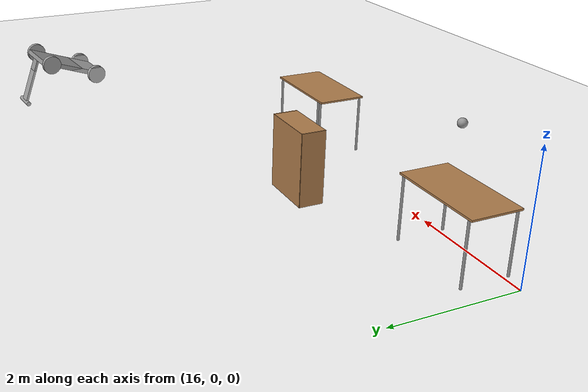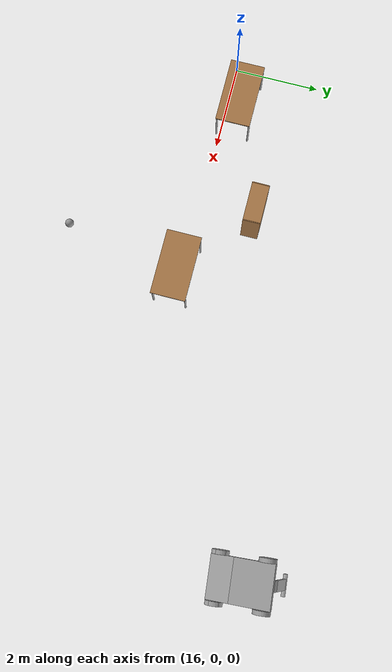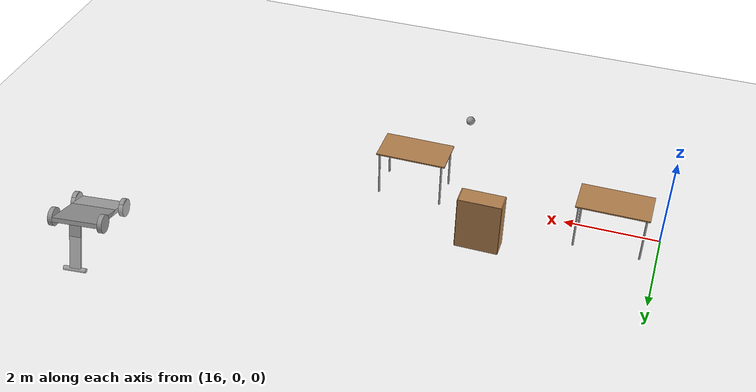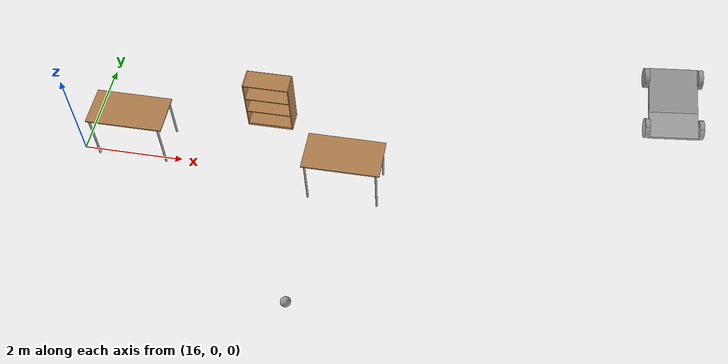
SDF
<sdf version="1.6">
 <world name="default">
  <model name="ground_plane">
   <static>1</static>
   <link name="link">
    <collision name="collision">
     <geometry><plane><normal>0 0 1</normal><size>100 100</size></plane></geometry>
     <surface><friction><ode><mu>100</mu><mu2>50</mu2></ode></friction></surface>
    </collision>
    <visual name="visual">
     <cast_shadows>0</cast_shadows>
     <geometry><plane><normal>0 0 1</normal><size>100 100</size></plane></geometry>
     <material>
      <script><uri>file://media/materials/scripts/gazebo.material</uri><name>Gazebo/Grey</name></script>
     </material>
    </visual>
   </link>
  </model>
  <model name="MyRover_0">
   <link name="link_0">
    <pose>0.552858 -0.344643 -0.228571 3.14159 1.57079 3.14159</pose>
    <inertial>
     <mass>1</mass>
     <inertia><ixx>0.145833</ixx><ixy>0</ixy><ixz>0</ixz><iyy>0.145833</iyy><iyz>0</iyz><izz>0.125</izz></inertia>
    </inertial>
    <visual name="visual">
     <geometry><cylinder><radius>0.2</radius><length>0.1</length></cylinder></geometry>
     <material>
      <lighting>1</lighting>
      <script><uri>file://media/materials/scripts/gazebo.material</uri><name>Gazebo/Grey</name></script>
      <ambient>0.3 0.3 0.3 1</ambient>
      <diffuse>0.7 0.7 0.7 1</diffuse>
      <specular>0.01 0.01 0.01 1</specular>
      <emissive>0 0 0 1</emissive>
      <shader type="vertex"><normal_map>__default__</normal_map></shader>
     </material>
    </visual>
    <collision name="collision">
     <geometry><cylinder><radius>0.2</radius><length>0.1</length></cylinder></geometry>
     <surface>
      <friction>
       <ode><mu>1</mu><mu2>1</mu2><fdir1>0 0 0</fdir1><slip1>0</slip1><slip2>0</slip2></ode>
       <torsional>
        <coefficient>1</coefficient>
        <patch_radius>0</patch_radius>
        <surface_radius>0</surface_radius>
        <use_patch_radius>1</use_patch_radius>
        <ode><slip>0</slip></ode>
       </torsional>
      </friction>
      <bounce><restitution_coefficient>0</restitution_coefficient><threshold>1e+06</threshold></bounce>
      <contact>
       <collide_without_contact>0</collide_without_contact>
       <collide_without_contact_bitmask>1</collide_without_contact_bitmask>
       <collide_bitmask>1</collide_bitmask>
       <ode>
        <soft_cfm>0</soft_cfm>
        <soft_erp>0.2</soft_erp>
        <kp>1e+13</kp>
        <kd>1</kd>
        <max_vel>0.01</max_vel>
        <min_depth>0</min_depth>
       </ode>
       <bullet>
        <split_impulse>1</split_impulse>
        <split_impulse_penetration_threshold>-0.01</split_impulse_penetration_threshold>
        <soft_cfm>0</soft_cfm>
        <soft_erp>0.2</soft_erp>
        <kp>1e+13</kp>
        <kd>1</kd>
       </bullet>
      </contact>
     </surface>
    </collision>
   </link>
   <link name="link_0_clone">
    <pose>-0.547144 0.755357 -0.228571 3.14159 1.57079 3.14159</pose>
    <inertial>
     <mass>1</mass>
     <inertia><ixx>0.145833</ixx><ixy>0</ixy><ixz>0</ixz><iyy>0.145833</iyy><iyz>0</iyz><izz>0.125</izz></inertia>
    </inertial>
    <visual name="visual">
     <geometry><cylinder><radius>0.2</radius><length>0.1</length></cylinder></geometry>
     <material>
      <lighting>1</lighting>
      <script><uri>file://media/materials/scripts/gazebo.material</uri><name>Gazebo/Grey</name></script>
      <ambient>0.3 0.3 0.3 1</ambient>
      <diffuse>0.7 0.7 0.7 1</diffuse>
      <specular>0.01 0.01 0.01 1</specular>
      <emissive>0 0 0 1</emissive>
      <shader type="vertex"><normal_map>__default__</normal_map></shader>
     </material>
    </visual>
    <collision name="collision">
     <geometry><cylinder><radius>0.2</radius><length>0.1</length></cylinder></geometry>
     <surface>
      <friction>
       <ode><mu>1</mu><mu2>1</mu2><fdir1>0 0 0</fdir1><slip1>0</slip1><slip2>0</slip2></ode>
       <torsional>
        <coefficient>1</coefficient>
        <patch_radius>0</patch_radius>
        <surface_radius>0</surface_radius>
        <use_patch_radius>1</use_patch_radius>
        <ode><slip>0</slip></ode>
       </torsional>
      </friction>
      <bounce><restitution_coefficient>0</restitution_coefficient><threshold>1e+06</threshold></bounce>
      <contact>
       <collide_without_contact>0</collide_without_contact>
       <collide_without_contact_bitmask>1</collide_without_contact_bitmask>
       <collide_bitmask>1</collide_bitmask>
       <ode>
        <soft_cfm>0</soft_cfm>
        <soft_erp>0.2</soft_erp>
        <kp>1e+13</kp>
        <kd>1</kd>
        <max_vel>0.01</max_vel>
        <min_depth>0</min_depth>
       </ode>
       <bullet>
        <split_impulse>1</split_impulse>
        <split_impulse_penetration_threshold>-0.01</split_impulse_penetration_threshold>
        <soft_cfm>0</soft_cfm>
        <soft_erp>0.2</soft_erp>
        <kp>1e+13</kp>
        <kd>1</kd>
       </bullet>
      </contact>
     </surface>
    </collision>
   </link>
   <link name="link_0_clone_0">
    <pose>0.552858 0.755357 -0.228571 3.14159 1.57079 3.14159</pose>
    <inertial>
     <mass>1</mass>
     <inertia><ixx>0.145833</ixx><ixy>0</ixy><ixz>0</ixz><iyy>0.145833</iyy><iyz>0</iyz><izz>0.125</izz></inertia>
    </inertial>
    <visual name="visual">
     <geometry><cylinder><radius>0.2</radius><length>0.1</length></cylinder></geometry>
     <material>
      <lighting>1</lighting>
      <script><uri>file://media/materials/scripts/gazebo.material</uri><name>Gazebo/Grey</name></script>
      <ambient>0.3 0.3 0.3 1</ambient>
      <diffuse>0.7 0.7 0.7 1</diffuse>
      <specular>0.01 0.01 0.01 1</specular>
      <emissive>0 0 0 1</emissive>
      <shader type="vertex"><normal_map>__default__</normal_map></shader>
     </material>
    </visual>
    <collision name="collision">
     <geometry><cylinder><radius>0.2</radius><length>0.1</length></cylinder></geometry>
     <surface>
      <friction>
       <ode><mu>1</mu><mu2>1</mu2><fdir1>0 0 0</fdir1><slip1>0</slip1><slip2>0</slip2></ode>
       <torsional>
        <coefficient>1</coefficient>
        <patch_radius>0</patch_radius>
        <surface_radius>0</surface_radius>
        <use_patch_radius>1</use_patch_radius>
        <ode><slip>0</slip></ode>
       </torsional>
      </friction>
      <bounce><restitution_coefficient>0</restitution_coefficient><threshold>1e+06</threshold></bounce>
      <contact>
       <collide_without_contact>0</collide_without_contact>
       <collide_without_contact_bitmask>1</collide_without_contact_bitmask>
       <collide_bitmask>1</collide_bitmask>
       <ode>
        <soft_cfm>0</soft_cfm>
        <soft_erp>0.2</soft_erp>
        <kp>1e+13</kp>
        <kd>1</kd>
        <max_vel>0.01</max_vel>
        <min_depth>0</min_depth>
       </ode>
       <bullet>
        <split_impulse>1</split_impulse>
        <split_impulse_penetration_threshold>-0.01</split_impulse_penetration_threshold>
        <soft_cfm>0</soft_cfm>
        <soft_erp>0.2</soft_erp>
        <kp>1e+13</kp>
        <kd>1</kd>
       </bullet>
      </contact>
     </surface>
    </collision>
   </link>
   <link name="link_0_clone_1">
    <pose>-0.547144 -0.344643 -0.228571 3.14159 1.57079 3.14159</pose>
    <inertial>
     <mass>1</mass>
     <inertia><ixx>0.145833</ixx><ixy>0</ixy><ixz>0</ixz><iyy>0.145833</iyy><iyz>0</iyz><izz>0.125</izz></inertia>
    </inertial>
    <visual name="visual">
     <geometry><cylinder><radius>0.2</radius><length>0.1</length></cylinder></geometry>
     <material>
      <lighting>1</lighting>
      <script><uri>file://media/materials/scripts/gazebo.material</uri><name>Gazebo/Grey</name></script>
      <ambient>0.3 0.3 0.3 1</ambient>
      <diffuse>0.7 0.7 0.7 1</diffuse>
      <specular>0.01 0.01 0.01 1</specular>
      <emissive>0 0 0 1</emissive>
      <shader type="vertex"><normal_map>__default__</normal_map></shader>
     </material>
    </visual>
    <collision name="collision">
     <geometry><cylinder><radius>0.2</radius><length>0.1</length></cylinder></geometry>
     <surface>
      <friction>
       <ode><mu>1</mu><mu2>1</mu2><fdir1>0 0 0</fdir1><slip1>0</slip1><slip2>0</slip2></ode>
       <torsional>
        <coefficient>1</coefficient>
        <patch_radius>0</patch_radius>
        <surface_radius>0</surface_radius>
        <use_patch_radius>1</use_patch_radius>
        <ode><slip>0</slip></ode>
       </torsional>
      </friction>
      <bounce><restitution_coefficient>0</restitution_coefficient><threshold>1e+06</threshold></bounce>
      <contact>
       <collide_without_contact>0</collide_without_contact>
       <collide_without_contact_bitmask>1</collide_without_contact_bitmask>
       <collide_bitmask>1</collide_bitmask>
       <ode>
        <soft_cfm>0</soft_cfm>
        <soft_erp>0.2</soft_erp>
        <kp>1e+13</kp>
        <kd>1</kd>
        <max_vel>0.01</max_vel>
        <min_depth>0</min_depth>
       </ode>
       <bullet>
        <split_impulse>1</split_impulse>
        <split_impulse_penetration_threshold>-0.01</split_impulse_penetration_threshold>
        <soft_cfm>0</soft_cfm>
        <soft_erp>0.2</soft_erp>
        <kp>1e+13</kp>
        <kd>1</kd>
       </bullet>
      </contact>
     </surface>
    </collision>
   </link>
   <link name="link_1">
    <pose>0.002857 0.205357 -0.228571 0 -0 0</pose>
    <inertial>
     <mass>1</mass>
     <inertia>
      <ixx>0.166667</ixx>
      <ixy>0</ixy>
      <ixz>0</ixz>
      <iyy>0.166667</iyy>
      <iyz>0</iyz>
      <izz>0.166667</izz>
     </inertia>
    </inertial>
    <visual name="visual">
     <geometry><box><size>1 1.5 0.1</size></box></geometry>
     <material>
      <lighting>1</lighting>
      <script><uri>file://media/materials/scripts/gazebo.material</uri><name>Gazebo/Grey</name></script>
      <ambient>0.3 0.3 0.3 1</ambient>
      <diffuse>0.7 0.7 0.7 1</diffuse>
      <specular>0.01 0.01 0.01 1</specular>
      <emissive>0 0 0 1</emissive>
      <shader type="vertex"><normal_map>__default__</normal_map></shader>
     </material>
    </visual>
    <collision name="collision">
     <geometry><box><size>1 1.5 0.1</size></box></geometry>
     <surface>
      <friction>
       <ode><mu>1</mu><mu2>1</mu2><fdir1>0 0 0</fdir1><slip1>0</slip1><slip2>0</slip2></ode>
       <torsional>
        <coefficient>1</coefficient>
        <patch_radius>0</patch_radius>
        <surface_radius>0</surface_radius>
        <use_patch_radius>1</use_patch_radius>
        <ode><slip>0</slip></ode>
       </torsional>
      </friction>
      <bounce><restitution_coefficient>0</restitution_coefficient><threshold>1e+06</threshold></bounce>
      <contact>
       <collide_without_contact>0</collide_without_contact>
       <collide_without_contact_bitmask>1</collide_without_contact_bitmask>
       <collide_bitmask>1</collide_bitmask>
       <ode>
        <soft_cfm>0</soft_cfm>
        <soft_erp>0.2</soft_erp>
        <kp>1e+13</kp>
        <kd>1</kd>
        <max_vel>0.01</max_vel>
        <min_depth>0</min_depth>
       </ode>
       <bullet>
        <split_impulse>1</split_impulse>
        <split_impulse_penetration_threshold>-0.01</split_impulse_penetration_threshold>
        <soft_cfm>0</soft_cfm>
        <soft_erp>0.2</soft_erp>
        <kp>1e+13</kp>
        <kd>1</kd>
       </bullet>
      </contact>
     </surface>
    </collision>
   </link>
   <link name="link_2">
    <pose>-0.017143 -0.519643 0.321429 0 -0 0</pose>
    <inertial>
     <mass>1</mass>
     <inertia>
      <ixx>0.166667</ixx>
      <ixy>0</ixy>
      <ixz>0</ixz>
      <iyy>0.166667</iyy>
      <iyz>0</iyz>
      <izz>0.166667</izz>
     </inertia>
    </inertial>
    <visual name="visual">
     <geometry><box><size>0.25 0.05 1</size></box></geometry>
     <material>
      <lighting>1</lighting>
      <script><uri>file://media/materials/scripts/gazebo.material</uri><name>Gazebo/Grey</name></script>
      <ambient>0.3 0.3 0.3 1</ambient>
      <diffuse>0.7 0.7 0.7 1</diffuse>
      <specular>0.01 0.01 0.01 1</specular>
      <emissive>0 0 0 1</emissive>
      <shader type="vertex"><normal_map>__default__</normal_map></shader>
     </material>
    </visual>
    <collision name="collision">
     <geometry><box><size>0.25 0.05 1</size></box></geometry>
     <surface>
      <friction>
       <ode><mu>1</mu><mu2>1</mu2><fdir1>0 0 0</fdir1><slip1>0</slip1><slip2>0</slip2></ode>
       <torsional>
        <coefficient>1</coefficient>
        <patch_radius>0</patch_radius>
        <surface_radius>0</surface_radius>
        <use_patch_radius>1</use_patch_radius>
        <ode><slip>0</slip></ode>
       </torsional>
      </friction>
      <bounce><restitution_coefficient>0</restitution_coefficient><threshold>1e+06</threshold></bounce>
      <contact>
       <collide_without_contact>0</collide_without_contact>
       <collide_without_contact_bitmask>1</collide_without_contact_bitmask>
       <collide_bitmask>1</collide_bitmask>
       <ode>
        <soft_cfm>0</soft_cfm>
        <soft_erp>0.2</soft_erp>
        <kp>1e+13</kp>
        <kd>1</kd>
        <max_vel>0.01</max_vel>
        <min_depth>0</min_depth>
       </ode>
       <bullet>
        <split_impulse>1</split_impulse>
        <split_impulse_penetration_threshold>-0.01</split_impulse_penetration_threshold>
        <soft_cfm>0</soft_cfm>
        <soft_erp>0.2</soft_erp>
        <kp>1e+13</kp>
        <kd>1</kd>
       </bullet>
      </contact>
     </surface>
    </collision>
   </link>
   <link name="link_3">
    <pose>0.002857 -0.507143 0.821429 3.14159 1.57079 3.14159</pose>
    <inertial>
     <mass>1</mass>
     <inertia><ixx>0.145833</ixx><ixy>0</ixy><ixz>0</ixz><iyy>0.145833</iyy><iyz>0</iyz><izz>0.125</izz></inertia>
    </inertial>
    <visual name="visual">
     <geometry><cylinder><radius>0.05</radius><length>0.5</length></cylinder></geometry>
     <material>
      <lighting>1</lighting>
      <script><uri>file://media/materials/scripts/gazebo.material</uri><name>Gazebo/Grey</name></script>
      <ambient>0.3 0.3 0.3 1</ambient>
      <diffuse>0.7 0.7 0.7 1</diffuse>
      <specular>0.01 0.01 0.01 1</specular>
      <emissive>0 0 0 1</emissive>
      <shader type="vertex"><normal_map>__default__</normal_map></shader>
     </material>
    </visual>
    <collision name="collision">
     <geometry><cylinder><radius>0.05</radius><length>0.5</length></cylinder></geometry>
     <surface>
      <friction>
       <ode><mu>1</mu><mu2>1</mu2><fdir1>0 0 0</fdir1><slip1>0</slip1><slip2>0</slip2></ode>
       <torsional>
        <coefficient>1</coefficient>
        <patch_radius>0</patch_radius>
        <surface_radius>0</surface_radius>
        <use_patch_radius>1</use_patch_radius>
        <ode><slip>0</slip></ode>
       </torsional>
      </friction>
      <bounce><restitution_coefficient>0</restitution_coefficient><threshold>1e+06</threshold></bounce>
      <contact>
       <collide_without_contact>0</collide_without_contact>
       <collide_without_contact_bitmask>1</collide_without_contact_bitmask>
       <collide_bitmask>1</collide_bitmask>
       <ode>
        <soft_cfm>0</soft_cfm>
        <soft_erp>0.2</soft_erp>
        <kp>1e+13</kp>
        <kd>1</kd>
        <max_vel>0.01</max_vel>
        <min_depth>0</min_depth>
       </ode>
       <bullet>
        <split_impulse>1</split_impulse>
        <split_impulse_penetration_threshold>-0.01</split_impulse_penetration_threshold>
        <soft_cfm>0</soft_cfm>
        <soft_erp>0.2</soft_erp>
        <kp>1e+13</kp>
        <kd>1</kd>
       </bullet>
      </contact>
     </surface>
    </collision>
   </link>
   <joint name="link_1_JOINT_1" type="revolute">
    <parent>link_1</parent>
    <child>link_0</child>
    <axis>
     <xyz>0 0 1</xyz>
     <use_parent_model_frame>0</use_parent_model_frame>
     <limit>
      <lower>-1.79769e+308</lower>
      <upper>1.79769e+308</upper>
      <effort>-1</effort>
      <velocity>-1</velocity>
     </limit>
     <dynamics>
      <spring_reference>0</spring_reference>
      <spring_stiffness>0</spring_stiffness>
      <damping>0</damping>
     </dynamics>
    </axis>
    <physics>
     <ode><limit><cfm>0</cfm><erp>0.2</erp></limit><suspension><cfm>0</cfm><erp>0.2</erp></suspension></ode>
    </physics>
   </joint>
   <joint name="link_1_JOINT_2" type="revolute">
    <parent>link_1</parent>
    <child>link_0_clone_0</child>
    <pose>0 0 0 -0.02 0 0</pose>
    <axis>
     <xyz>0 0 1</xyz>
     <use_parent_model_frame>0</use_parent_model_frame>
     <limit>
      <lower>-1.79769e+308</lower>
      <upper>1.79769e+308</upper>
      <effort>-1</effort>
      <velocity>-1</velocity>
     </limit>
     <dynamics>
      <spring_reference>0</spring_reference>
      <spring_stiffness>0</spring_stiffness>
      <damping>0</damping>
     </dynamics>
    </axis>
    <physics>
     <ode><limit><cfm>0</cfm><erp>0.2</erp></limit><suspension><cfm>0</cfm><erp>0.2</erp></suspension></ode>
    </physics>
   </joint>
   <joint name="link_1_JOINT_4" type="revolute">
    <parent>link_1</parent>
    <child>link_0_clone</child>
    <axis>
     <xyz>0 0 1</xyz>
     <use_parent_model_frame>0</use_parent_model_frame>
     <limit>
      <lower>-1.79769e+308</lower>
      <upper>1.79769e+308</upper>
      <effort>-1</effort>
      <velocity>-1</velocity>
     </limit>
     <dynamics>
      <spring_reference>0</spring_reference>
      <spring_stiffness>0</spring_stiffness>
      <damping>0</damping>
     </dynamics>
    </axis>
    <physics>
     <ode><limit><cfm>0</cfm><erp>0.2</erp></limit><suspension><cfm>0</cfm><erp>0.2</erp></suspension></ode>
    </physics>
   </joint>
   <joint name="link_1_JOINT_5" type="revolute">
    <parent>link_1</parent>
    <child>link_0_clone_1</child>
    <axis>
     <xyz>0 0 1</xyz>
     <use_parent_model_frame>0</use_parent_model_frame>
     <limit>
      <lower>-1.79769e+308</lower>
      <upper>1.79769e+308</upper>
      <effort>-1</effort>
      <velocity>-1</velocity>
     </limit>
     <dynamics>
      <spring_reference>0</spring_reference>
      <spring_stiffness>0</spring_stiffness>
      <damping>0</damping>
     </dynamics>
    </axis>
    <physics>
     <ode><limit><cfm>0</cfm><erp>0.2</erp></limit><suspension><cfm>0</cfm><erp>0.2</erp></suspension></ode>
    </physics>
   </joint>
   <joint name="link_1_JOINT_6" type="fixed">
    <parent>link_1</parent>
    <child>link_2</child>
    <physics>
     <ode><limit><cfm>0</cfm><erp>0.2</erp></limit><suspension><cfm>0</cfm><erp>0.2</erp></suspension></ode>
    </physics>
   </joint>
   <joint name="link_2_JOINT_7" type="revolute">
    <parent>link_2</parent>
    <child>link_3</child>
    <axis>
     <xyz>0 0 1</xyz>
     <use_parent_model_frame>0</use_parent_model_frame>
     <limit>
      <lower>-1.79769e+308</lower>
      <upper>1.79769e+308</upper>
      <effort>-1</effort>
      <velocity>-1</velocity>
     </limit>
     <dynamics>
      <spring_reference>0</spring_reference>
      <spring_stiffness>0</spring_stiffness>
      <damping>0</damping>
     </dynamics>
    </axis>
    <physics>
     <ode><limit><cfm>0</cfm><erp>0.2</erp></limit><suspension><cfm>0</cfm><erp>0.2</erp></suspension></ode>
    </physics>
   </joint>
   <static>0</static>
   <pose>27.5982 3.25224 -0.132705 -2.79232 1.2e-05 0.104202</pose>
  </model>
  <model name="table">
   <static>1</static>
   <link name="link">
    <collision name="surface">
     <pose>0 0 1 0 -0 0</pose>
     <geometry><box><size>1.5 0.8 0.03</size></box></geometry>
     <surface><friction><ode><mu>0.6</mu><mu2>0.6</mu2></ode></friction></surface>
    </collision>
    <visual name="visual1">
     <pose>0 0 1 0 -0 0</pose>
     <geometry><box><size>1.5 0.8 0.03</size></box></geometry>
     <material>
      <script><uri>file://media/materials/scripts/gazebo.material</uri><name>Gazebo/Wood</name></script>
     </material>
    </visual>
    <collision name="front_left_leg">
     <pose>0.68 0.38 0.5 0 -0 0</pose>
     <geometry><cylinder><radius>0.02</radius><length>1</length></cylinder></geometry>
    </collision>
    <visual name="front_left_leg">
     <pose>0.68 0.38 0.5 0 -0 0</pose>
     <geometry><cylinder><radius>0.02</radius><length>1</length></cylinder></geometry>
     <material>
      <script><uri>file://media/materials/scripts/gazebo.material</uri><name>Gazebo/Grey</name></script>
     </material>
    </visual>
    <collision name="front_right_leg">
     <pose>0.68 -0.38 0.5 0 -0 0</pose>
     <geometry><cylinder><radius>0.02</radius><length>1</length></cylinder></geometry>
    </collision>
    <visual name="front_right_leg">
     <pose>0.68 -0.38 0.5 0 -0 0</pose>
     <geometry><cylinder><radius>0.02</radius><length>1</length></cylinder></geometry>
     <material>
      <script><uri>file://media/materials/scripts/gazebo.material</uri><name>Gazebo/Grey</name></script>
     </material>
    </visual>
    <collision name="back_right_leg">
     <pose>-0.68 -0.38 0.5 0 -0 0</pose>
     <geometry><cylinder><radius>0.02</radius><length>1</length></cylinder></geometry>
    </collision>
    <visual name="back_right_leg">
     <pose>-0.68 -0.38 0.5 0 -0 0</pose>
     <geometry><cylinder><radius>0.02</radius><length>1</length></cylinder></geometry>
     <material>
      <script><uri>file://media/materials/scripts/gazebo.material</uri><name>Gazebo/Grey</name></script>
     </material>
    </visual>
    <collision name="back_left_leg">
     <pose>-0.68 0.38 0.5 0 -0 0</pose>
     <geometry><cylinder><radius>0.02</radius><length>1</length></cylinder></geometry>
    </collision>
    <visual name="back_left_leg">
     <pose>-0.68 0.38 0.5 0 -0 0</pose>
     <geometry><cylinder><radius>0.02</radius><length>1</length></cylinder></geometry>
     <material>
      <script><uri>file://media/materials/scripts/gazebo.material</uri><name>Gazebo/Grey</name></script>
     </material>
    </visual>
   </link>
   <pose>17.0118 0.295759 0 0 -0 0</pose>
  </model>
  <model name="bookshelf">
   <static>1</static>
   <link name="link">
    <inertial><mass>1</mass></inertial>
    <collision name="back">
     <pose>0 0.005 0.6 0 -0 0</pose>
     <geometry><box><size>0.9 0.01 1.2</size></box></geometry>
    </collision>
    <visual name="visual1">
     <pose>0 0.005 0.6 0 -0 0</pose>
     <geometry><box><size>0.9 0.01 1.2</size></box></geometry>
     <material>
      <script><uri>file://media/materials/scripts/gazebo.material</uri><name>Gazebo/Wood</name></script>
     </material>
    </visual>
    <collision name="left_side">
     <pose>0.45 -0.195 0.6 0 -0 0</pose>
     <geometry><box><size>0.02 0.4 1.2</size></box></geometry>
    </collision>
    <visual name="visual2">
     <pose>0.45 -0.195 0.6 0 -0 0</pose>
     <geometry><box><size>0.02 0.4 1.2</size></box></geometry>
     <material>
      <script><uri>file://media/materials/scripts/gazebo.material</uri><name>Gazebo/Wood</name></script>
     </material>
    </visual>
    <collision name="right_side">
     <pose>-0.45 -0.195 0.6 0 -0 0</pose>
     <geometry><box><size>0.02 0.4 1.2</size></box></geometry>
    </collision>
    <visual name="visual3">
     <pose>-0.45 -0.195 0.6 0 -0 0</pose>
     <geometry><box><size>0.02 0.4 1.2</size></box></geometry>
     <material>
      <script><uri>file://media/materials/scripts/gazebo.material</uri><name>Gazebo/Wood</name></script>
     </material>
    </visual>
    <collision name="bottom">
     <pose>0 -0.195 0.03 0 -0 0</pose>
     <geometry><box><size>0.88 0.4 0.06</size></box></geometry>
    </collision>
    <visual name="visual4">
     <pose>0 -0.195 0.03 0 -0 0</pose>
     <geometry><box><size>0.88 0.4 0.06</size></box></geometry>
     <material>
      <script><uri>file://media/materials/scripts/gazebo.material</uri><name>Gazebo/Wood</name></script>
     </material>
    </visual>
    <collision name="top">
     <pose>0 -0.195 1.19 0 -0 0</pose>
     <geometry><box><size>0.88 0.4 0.02</size></box></geometry>
    </collision>
    <visual name="visual5">
     <pose>0 -0.195 1.19 0 -0 0</pose>
     <geometry><box><size>0.88 0.4 0.02</size></box></geometry>
     <material>
      <script><uri>file://media/materials/scripts/gazebo.material</uri><name>Gazebo/Wood</name></script>
     </material>
    </visual>
    <collision name="low_shelf">
     <pose>0 -0.195 0.43 0 -0 0</pose>
     <geometry><box><size>0.88 0.4 0.02</size></box></geometry>
    </collision>
    <visual name="visual6">
     <pose>0 -0.195 0.43 0 -0 0</pose>
     <geometry><box><size>0.88 0.4 0.02</size></box></geometry>
     <material>
      <script><uri>file://media/materials/scripts/gazebo.material</uri><name>Gazebo/Wood</name></script>
     </material>
    </visual>
    <collision name="high_shelf">
     <pose>0 -0.195 0.8 0 -0 0</pose>
     <geometry><box><size>0.88 0.4 0.02</size></box></geometry>
    </collision>
    <visual name="visual7">
     <pose>0 -0.195 0.8 0 -0 0</pose>
     <geometry><box><size>0.88 0.4 0.02</size></box></geometry>
     <material>
      <script><uri>file://media/materials/scripts/gazebo.material</uri><name>Gazebo/Wood</name></script>
     </material>
    </visual>
   </link>
   <pose>19.5479 1.47787 0 0 -0 0</pose>
  </model>
  <model name="table_0">
   <static>1</static>
   <link name="link">
    <collision name="surface">
     <pose>0 0 1 0 -0 0</pose>
     <geometry><box><size>1.5 0.8 0.03</size></box></geometry>
     <surface><friction><ode><mu>0.6</mu><mu2>0.6</mu2></ode></friction></surface>
    </collision>
    <visual name="visual1">
     <pose>0 0 1 0 -0 0</pose>
     <geometry><box><size>1.5 0.8 0.03</size></box></geometry>
     <material>
      <script><uri>file://media/materials/scripts/gazebo.material</uri><name>Gazebo/Wood</name></script>
     </material>
    </visual>
    <collision name="front_left_leg">
     <pose>0.68 0.38 0.5 0 -0 0</pose>
     <geometry><cylinder><radius>0.02</radius><length>1</length></cylinder></geometry>
    </collision>
    <visual name="front_left_leg">
     <pose>0.68 0.38 0.5 0 -0 0</pose>
     <geometry><cylinder><radius>0.02</radius><length>1</length></cylinder></geometry>
     <material>
      <script><uri>file://media/materials/scripts/gazebo.material</uri><name>Gazebo/Grey</name></script>
     </material>
    </visual>
    <collision name="front_right_leg">
     <pose>0.68 -0.38 0.5 0 -0 0</pose>
     <geometry><cylinder><radius>0.02</radius><length>1</length></cylinder></geometry>
    </collision>
    <visual name="front_right_leg">
     <pose>0.68 -0.38 0.5 0 -0 0</pose>
     <geometry><cylinder><radius>0.02</radius><length>1</length></cylinder></geometry>
     <material>
      <script><uri>file://media/materials/scripts/gazebo.material</uri><name>Gazebo/Grey</name></script>
     </material>
    </visual>
    <collision name="back_right_leg">
     <pose>-0.68 -0.38 0.5 0 -0 0</pose>
     <geometry><cylinder><radius>0.02</radius><length>1</length></cylinder></geometry>
    </collision>
    <visual name="back_right_leg">
     <pose>-0.68 -0.38 0.5 0 -0 0</pose>
     <geometry><cylinder><radius>0.02</radius><length>1</length></cylinder></geometry>
     <material>
      <script><uri>file://media/materials/scripts/gazebo.material</uri><name>Gazebo/Grey</name></script>
     </material>
    </visual>
    <collision name="back_left_leg">
     <pose>-0.68 0.38 0.5 0 -0 0</pose>
     <geometry><cylinder><radius>0.02</radius><length>1</length></cylinder></geometry>
    </collision>
    <visual name="back_left_leg">
     <pose>-0.68 0.38 0.5 0 -0 0</pose>
     <geometry><cylinder><radius>0.02</radius><length>1</length></cylinder></geometry>
     <material>
      <script><uri>file://media/materials/scripts/gazebo.material</uri><name>Gazebo/Grey</name></script>
     </material>
    </visual>
   </link>
   <pose>21.3297 -0.100992 0 0 -0 0</pose>
  </model>
  <model name="my_ball">
   <link name="link_0">
    <inertial>
     <mass>1</mass>
     <inertia><ixx>0.1</ixx><ixy>0</ixy><ixz>0</ixz><iyy>0.1</iyy><iyz>0</iyz><izz>0.1</izz></inertia>
    </inertial>
    <visual name="visual">
     <geometry><sphere><radius>0.1</radius></sphere></geometry>
     <material>
      <lighting>1</lighting>
      <script><uri>file://media/materials/scripts/gazebo.material</uri><name>Gazebo/Grey</name></script>
      <ambient>1 1 1 1</ambient>
      <diffuse>1 1 1 1</diffuse>
      <specular>1 1 1 1</specular>
      <emissive>1 1 1 1</emissive>
      <shader type="vertex"><normal_map>__default__</normal_map></shader>
     </material>
    </visual>
    <collision name="collision">
     <geometry><sphere><radius>0.1</radius></sphere></geometry>
     <surface>
      <friction>
       <ode><mu>1</mu><mu2>1</mu2><fdir1>0 0 0</fdir1><slip1>0</slip1><slip2>0</slip2></ode>
       <torsional>
        <coefficient>1</coefficient>
        <patch_radius>0</patch_radius>
        <surface_radius>0</surface_radius>
        <use_patch_radius>1</use_patch_radius>
        <ode><slip>0</slip></ode>
       </torsional>
      </friction>
      <bounce><restitution_coefficient>0</restitution_coefficient><threshold>1e+06</threshold></bounce>
      <contact>
       <collide_without_contact>0</collide_without_contact>
       <collide_without_contact_bitmask>1</collide_without_contact_bitmask>
       <collide_bitmask>1</collide_bitmask>
       <ode>
        <soft_cfm>0</soft_cfm>
        <soft_erp>0.2</soft_erp>
        <kp>1e+13</kp>
        <kd>1</kd>
        <max_vel>0.01</max_vel>
        <min_depth>0</min_depth>
       </ode>
       <bullet>
        <split_impulse>1</split_impulse>
        <split_impulse_penetration_threshold>-0.01</split_impulse_penetration_threshold>
        <soft_cfm>0</soft_cfm>
        <soft_erp>0.2</soft_erp>
        <kp>1e+13</kp>
        <kd>1</kd>
       </bullet>
      </contact>
     </surface>
    </collision>
   </link>
   <static>0</static>
   <pose>20.7513 -2.85799 0.1 0 -0 0</pose>
  </model>
 </world>
</sdf>
